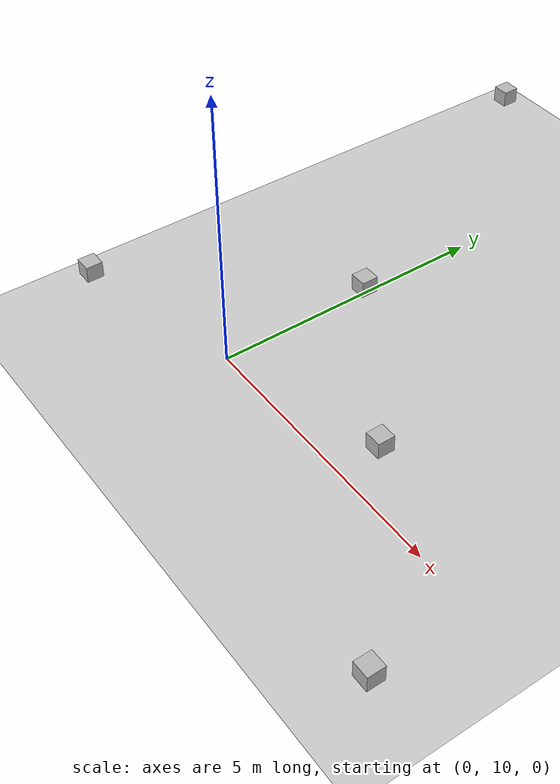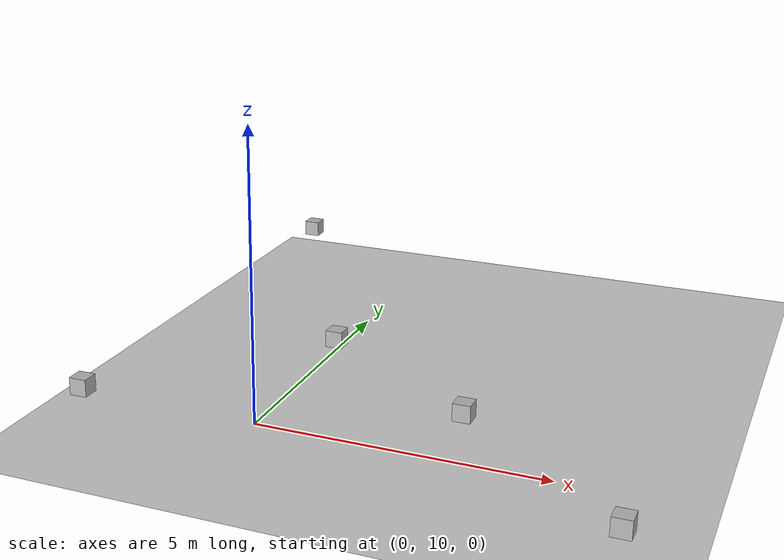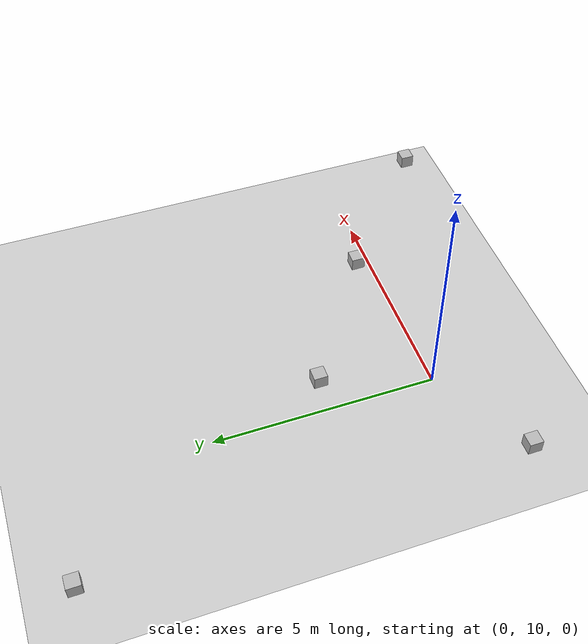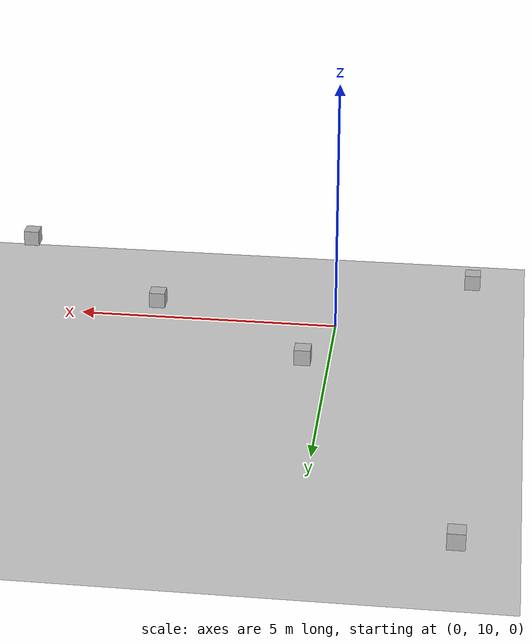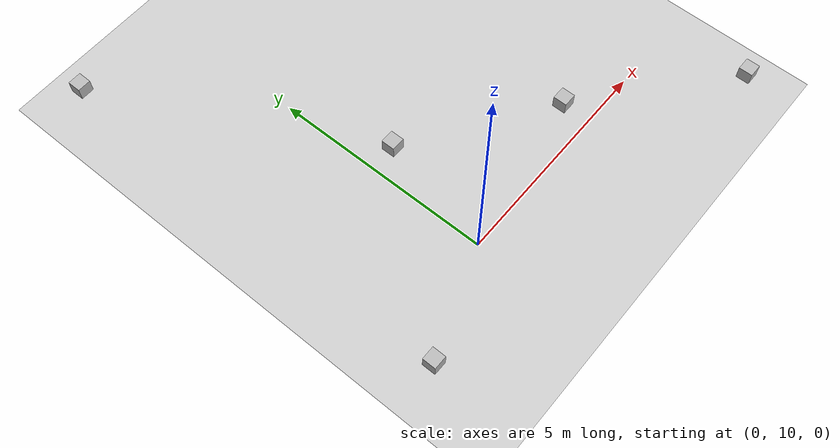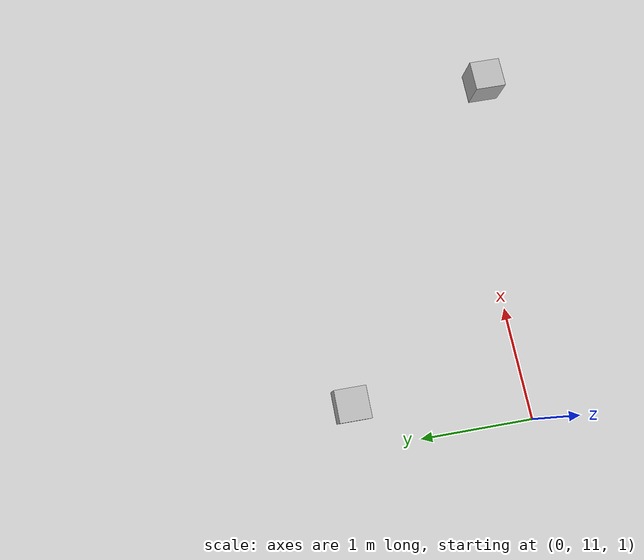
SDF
<?xml version="1.0" ?>
<sdf version="1.5">
  <world name="rahmlab_panda">
    <!--A global light source-->
    <include>
      <uri>model://sun</uri>
    </include>
    <!--A ground plane-->
    <include>
      <uri>model://ground_plane</uri>
    </include>
    <!--A platform-->
    <include>
      <uri>model://platform</uri>
      <pose>0.4 0 0.209911 0 0 0</pose>
    </include>
    <!--A cube-->
    <include>
      <uri>model://cube</uri>
      <pose>0.4 0 0.419088 0 0 0</pose>
    </include>
    <!--Camera settings-->
    <gui fullscreen='0'>
      <camera name='user_camera'>
        <pose>1.59801 -1.66211 1.29545 -0 0.419643 2.23219</pose>
        <view_controller>orbit</view_controller>
        <projection_type>perspective</projection_type>
      </camera>
    </gui>
    <!--Load Panda joint fixer Gazebo world plugin-->
    <plugin name="panda_joint_locker" filename="libpanda_gazebo.so"/>
  </world>
</sdf>

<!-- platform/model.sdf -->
<sdf version="1.6">
  <model name="platform">
    <static>false</static>
    <link name="dummy_upper"/>

    <joint name="world_joint" type="fixed">
      <parent>world</parent>
      <child>dummy_upper</child>
    </joint>
  </model>
</sdf>

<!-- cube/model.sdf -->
<sdf version="1.5">
    <model name="cube">
        <static>true</static>
        <link name="link">
            <collision name="collision1">
                <pose>0 12.5 0.1 0 0 0</pose>
                <geometry>
                    <mesh>
                        <uri>model://cube/meshes/cube.dae</uri>
                    </mesh>
                </geometry>
            </collision>
            <visual name="visual1">

              <pose>0 12.5 0.1 0 0 0</pose>
              <geometry>
              <mesh>
                 <uri>model://cube/meshes/cube.dae</uri>
              </mesh>
              </geometry>

              <material>
                  <script>
                      <uri>model://cube/materials/scripts</uri>
                      <uri>model://cube/materials/textures</uri>
                      <name>cubeMat/Diffuse</name>
                  </script>
              </material>
             </visual>

             <collision name="collision2">
                <pose>3 10.5 0.1 0 0 0</pose>
                <geometry>
                    <mesh>
                        <uri>model://cube/meshes/cube.dae</uri>
                    </mesh>
                </geometry>
            </collision>
            <visual name="visual2">

              <pose>3 10.5 0.1 0 0 0</pose>
              <geometry>
              <mesh>
                 <uri>model://cube/meshes/cube.dae</uri>
              </mesh>
              </geometry>

              <material>
                  <script>
                      <uri>model://cube/materials/scripts</uri>
                      <uri>model://cube/materials/textures</uri>
                      <name>cubeMat/Diffuse</name>
                  </script>
              </material>
             </visual>

             <collision name="collision3">
                <pose>-3 9 0.1 0 0 0</pose>
                <geometry>
                    <mesh>
                        <uri>model://cube/meshes/cube.dae</uri>
                    </mesh>
                </geometry>
            </collision>
            <visual name="visual3">

              <pose>-3 9 0.1 0 0 0</pose>
              <geometry>
              <mesh>
                 <uri>model://cube/meshes/cube.dae</uri>
              </mesh>
              </geometry>

              <material>
                  <script>
                      <uri>model://cube/materials/scripts</uri>
                      <uri>model://cube/materials/textures</uri>
                      <name>cubeMat/Diffuse</name>
                  </script>
              </material>
             </visual>

             <collision name="collision4">
                <pose>6 8 0.1 0 0 0</pose>
                <geometry>
                    <mesh>
                        <uri>model://cube/meshes/cube.dae</uri>
                    </mesh>
                </geometry>
            </collision>
            <visual name="visual4">

              <pose>6 8 0.1 0 0 0</pose>
              <geometry>
              <mesh>
                 <uri>model://cube/meshes/cube.dae</uri>
              </mesh>
              </geometry>

              <material>
                  <script>
                      <uri>model://cube/materials/scripts</uri>
                      <uri>model://cube/materials/textures</uri>
                      <name>cubeMat/Diffuse</name>
                  </script>
              </material>
             </visual>

             <collision name="collision5">
                <pose>-3 18.3 0.1 0 0 0</pose>
                <geometry>
                    <mesh>
                        <uri>model://cube/meshes/cube.dae</uri>
                    </mesh>
                </geometry>
            </collision>
            <visual name="visual5">

              <pose>-3 18.3 0.1 0 0 0</pose>
              <geometry>
              <mesh>
                 <uri>model://cube/meshes/cube.dae</uri>
              </mesh>
              </geometry>

              <material>
                  <script>
                      <uri>model://cube/materials/scripts</uri>
                      <uri>model://cube/materials/textures</uri>
                      <name>cubeMat/Diffuse</name>
                  </script>
              </material>
             </visual>
        </link>
    </model>
</sdf>
